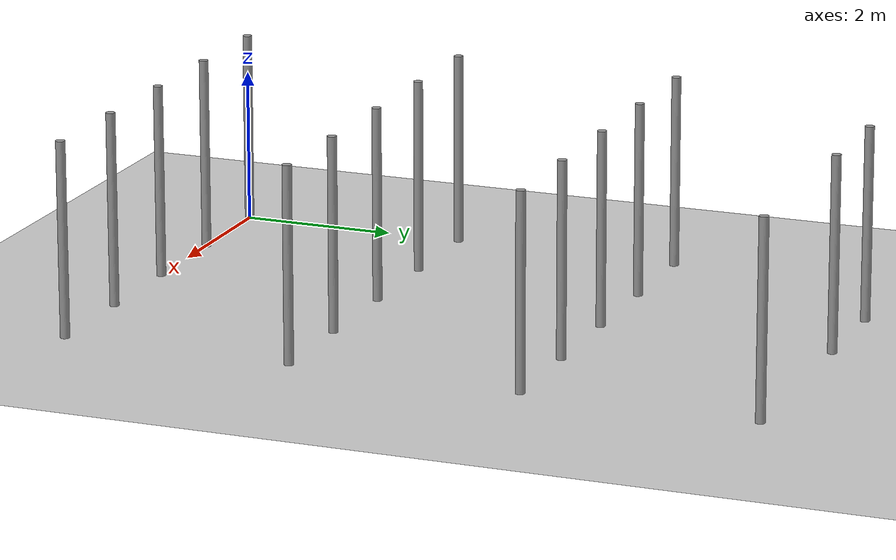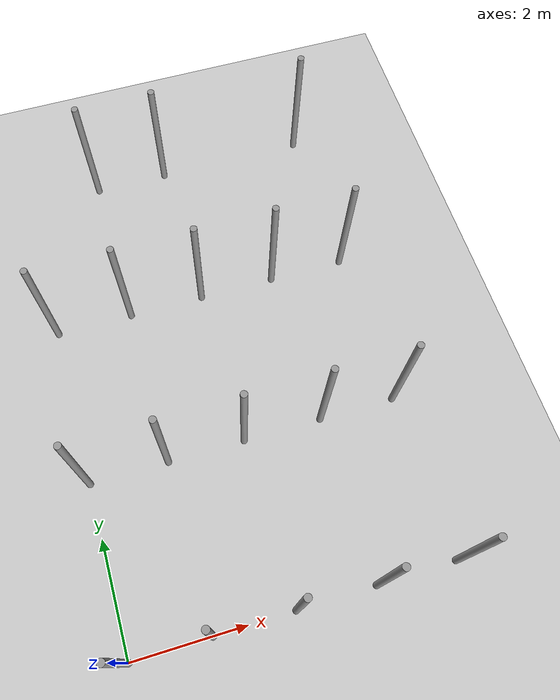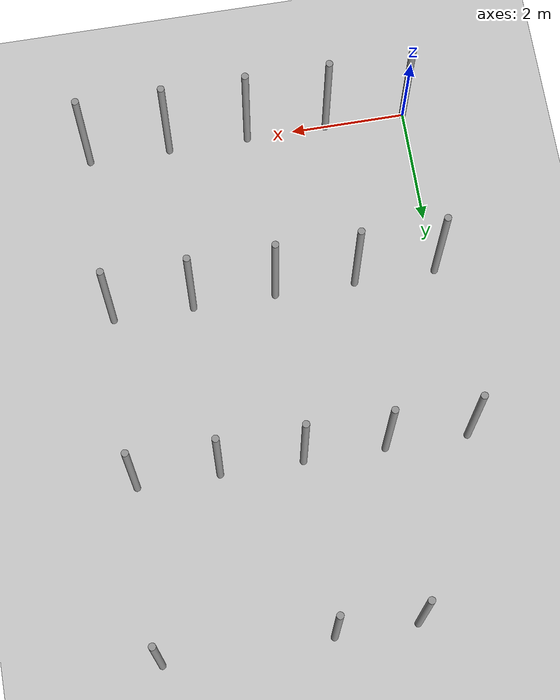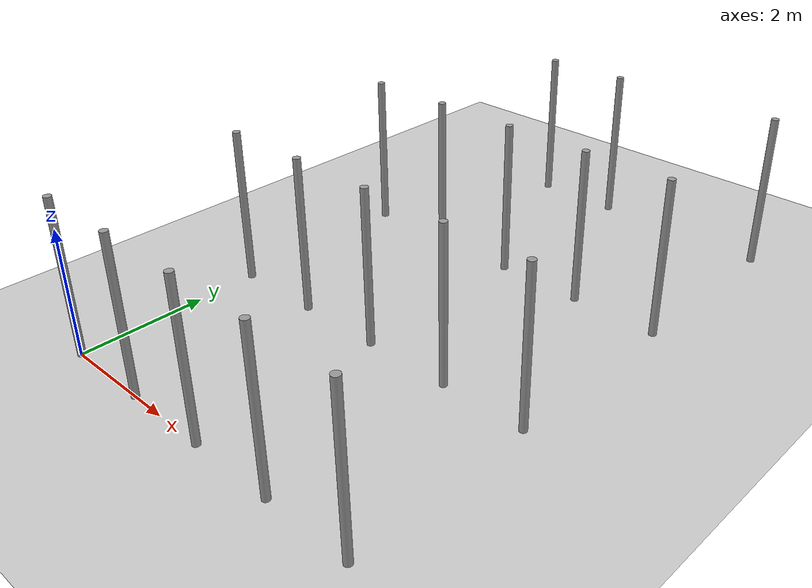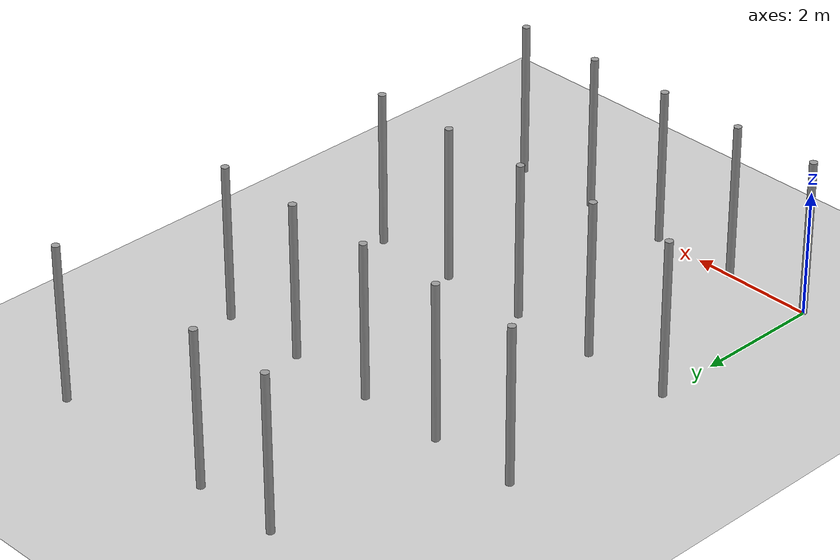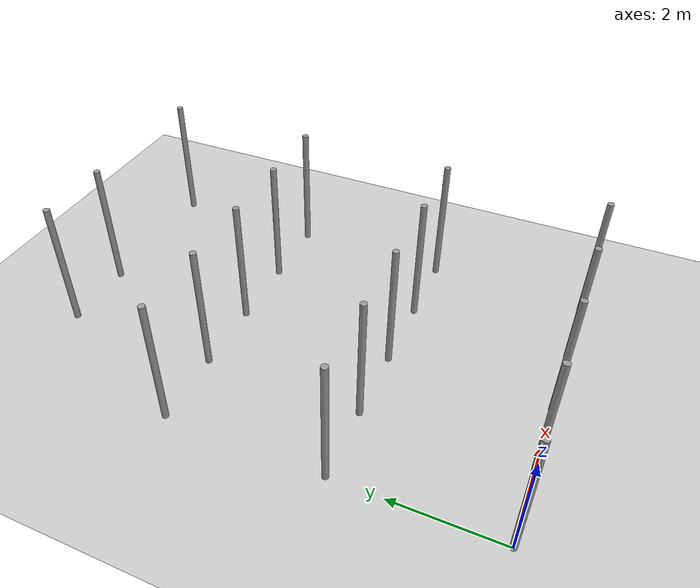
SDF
<sdf version="1.6">
 <world name="default">
  <model name="ground_plane">
   <static>1</static>
   <link name="link">
    <collision name="collision">
     <geometry><plane><normal>0 0 1</normal><size>100 100</size></plane></geometry>
     <surface><friction><ode><mu>100</mu><mu2>50</mu2></ode></friction></surface>
    </collision>
    <visual name="visual">
     <cast_shadows>0</cast_shadows>
     <geometry><plane><normal>0 0 1</normal><size>100 100</size></plane></geometry>
     <material>
      <script><uri>file://media/materials/scripts/gazebo.material</uri><name>Gazebo/Grey</name></script>
     </material>
    </visual>
   </link>
  </model>
  <model name="pole_8">
   <link name="link_0">
    <inertial>
     <mass>0.0364582</mass>
     <inertia>
      <ixx>0.00312124</ixx>
      <ixy>0</ixy>
      <ixz>0</ixz>
      <iyy>0.00312124</iyy>
      <iyz>0</iyz>
      <izz>0.00016615</izz>
     </inertia>
    </inertial>
    <visual name="visual">
     <geometry><cylinder><radius>0.06</radius><length>2.5</length></cylinder></geometry>
     <material>
      <lighting>1</lighting>
      <script><uri>file://media/materials/scripts/gazebo.material</uri><name>Gazebo/Grey</name></script>
      <ambient>0.3 0.3 0.3 1</ambient>
      <diffuse>0.7 0.7 0.7 1</diffuse>
      <specular>0.01 0.01 0.01 1</specular>
      <emissive>0 0 0 1</emissive>
      <shader type="vertex"><normal_map>__default__</normal_map></shader>
     </material>
    </visual>
    <collision name="collision">
     <geometry><cylinder><radius>0.06</radius><length>2.5</length></cylinder></geometry>
     <surface>
      <friction>
       <ode><mu>1</mu><mu2>1</mu2><fdir1>0 0 0</fdir1><slip1>0</slip1><slip2>0</slip2></ode>
       <torsional>
        <coefficient>1</coefficient>
        <patch_radius>0</patch_radius>
        <surface_radius>0</surface_radius>
        <use_patch_radius>1</use_patch_radius>
        <ode><slip>0</slip></ode>
       </torsional>
      </friction>
      <bounce><restitution_coefficient>0</restitution_coefficient><threshold>1e+06</threshold></bounce>
      <contact>
       <collide_without_contact>0</collide_without_contact>
       <collide_without_contact_bitmask>1</collide_without_contact_bitmask>
       <collide_bitmask>1</collide_bitmask>
       <ode>
        <soft_cfm>0</soft_cfm>
        <soft_erp>0.2</soft_erp>
        <kp>1e+13</kp>
        <kd>1</kd>
        <max_vel>0.01</max_vel>
        <min_depth>0</min_depth>
       </ode>
       <bullet>
        <split_impulse>1</split_impulse>
        <split_impulse_penetration_threshold>-0.01</split_impulse_penetration_threshold>
        <soft_cfm>0</soft_cfm>
        <soft_erp>0.2</soft_erp>
        <kp>1e+13</kp>
        <kd>1</kd>
       </bullet>
      </contact>
     </surface>
    </collision>
   </link>
   <static>0</static>
   <pose>1.40425 0.001634 1.24999 -1e-06 -0 -0.021184</pose>
  </model>
  <model name="pole_9">
   <link name="link_0">
    <inertial>
     <mass>0.0364582</mass>
     <inertia>
      <ixx>0.00312124</ixx>
      <ixy>0</ixy>
      <ixz>0</ixz>
      <iyy>0.00312124</iyy>
      <iyz>0</iyz>
      <izz>0.00016615</izz>
     </inertia>
    </inertial>
    <visual name="visual">
     <geometry><cylinder><radius>0.06</radius><length>2.5</length></cylinder></geometry>
     <material>
      <lighting>1</lighting>
      <script><uri>file://media/materials/scripts/gazebo.material</uri><name>Gazebo/Grey</name></script>
      <ambient>0.3 0.3 0.3 1</ambient>
      <diffuse>0.7 0.7 0.7 1</diffuse>
      <specular>0.01 0.01 0.01 1</specular>
      <emissive>0 0 0 1</emissive>
      <shader type="vertex"><normal_map>__default__</normal_map></shader>
     </material>
    </visual>
    <collision name="collision">
     <geometry><cylinder><radius>0.06</radius><length>2.5</length></cylinder></geometry>
     <surface>
      <friction>
       <ode><mu>1</mu><mu2>1</mu2><fdir1>0 0 0</fdir1><slip1>0</slip1><slip2>0</slip2></ode>
       <torsional>
        <coefficient>1</coefficient>
        <patch_radius>0</patch_radius>
        <surface_radius>0</surface_radius>
        <use_patch_radius>1</use_patch_radius>
        <ode><slip>0</slip></ode>
       </torsional>
      </friction>
      <bounce><restitution_coefficient>0</restitution_coefficient><threshold>1e+06</threshold></bounce>
      <contact>
       <collide_without_contact>0</collide_without_contact>
       <collide_without_contact_bitmask>1</collide_without_contact_bitmask>
       <collide_bitmask>1</collide_bitmask>
       <ode>
        <soft_cfm>0</soft_cfm>
        <soft_erp>0.2</soft_erp>
        <kp>1e+13</kp>
        <kd>1</kd>
        <max_vel>0.01</max_vel>
        <min_depth>0</min_depth>
       </ode>
       <bullet>
        <split_impulse>1</split_impulse>
        <split_impulse_penetration_threshold>-0.01</split_impulse_penetration_threshold>
        <soft_cfm>0</soft_cfm>
        <soft_erp>0.2</soft_erp>
        <kp>1e+13</kp>
        <kd>1</kd>
       </bullet>
      </contact>
     </surface>
    </collision>
   </link>
   <static>0</static>
   <pose>2.80805 0.00187 1.24999 0 1e-06 -0.038737</pose>
  </model>
  <model name="pole_10">
   <link name="link_0">
    <inertial>
     <mass>0.0364582</mass>
     <inertia>
      <ixx>0.00312124</ixx>
      <ixy>0</ixy>
      <ixz>0</ixz>
      <iyy>0.00312124</iyy>
      <iyz>0</iyz>
      <izz>0.00016615</izz>
     </inertia>
    </inertial>
    <visual name="visual">
     <geometry><cylinder><radius>0.06</radius><length>2.5</length></cylinder></geometry>
     <material>
      <lighting>1</lighting>
      <script><uri>file://media/materials/scripts/gazebo.material</uri><name>Gazebo/Grey</name></script>
      <ambient>0.3 0.3 0.3 1</ambient>
      <diffuse>0.7 0.7 0.7 1</diffuse>
      <specular>0.01 0.01 0.01 1</specular>
      <emissive>0 0 0 1</emissive>
      <shader type="vertex"><normal_map>__default__</normal_map></shader>
     </material>
    </visual>
    <collision name="collision">
     <geometry><cylinder><radius>0.06</radius><length>2.5</length></cylinder></geometry>
     <surface>
      <friction>
       <ode><mu>1</mu><mu2>1</mu2><fdir1>0 0 0</fdir1><slip1>0</slip1><slip2>0</slip2></ode>
       <torsional>
        <coefficient>1</coefficient>
        <patch_radius>0</patch_radius>
        <surface_radius>0</surface_radius>
        <use_patch_radius>1</use_patch_radius>
        <ode><slip>0</slip></ode>
       </torsional>
      </friction>
      <bounce><restitution_coefficient>0</restitution_coefficient><threshold>1e+06</threshold></bounce>
      <contact>
       <collide_without_contact>0</collide_without_contact>
       <collide_without_contact_bitmask>1</collide_without_contact_bitmask>
       <collide_bitmask>1</collide_bitmask>
       <ode>
        <soft_cfm>0</soft_cfm>
        <soft_erp>0.2</soft_erp>
        <kp>1e+13</kp>
        <kd>1</kd>
        <max_vel>0.01</max_vel>
        <min_depth>0</min_depth>
       </ode>
       <bullet>
        <split_impulse>1</split_impulse>
        <split_impulse_penetration_threshold>-0.01</split_impulse_penetration_threshold>
        <soft_cfm>0</soft_cfm>
        <soft_erp>0.2</soft_erp>
        <kp>1e+13</kp>
        <kd>1</kd>
       </bullet>
      </contact>
     </surface>
    </collision>
   </link>
   <static>0</static>
   <pose>4.20399 0.001699 1.24999 -1e-06 1e-06 -0.02411</pose>
  </model>
  <model name="pole_11">
   <link name="link_0">
    <inertial>
     <mass>0.0364582</mass>
     <inertia>
      <ixx>0.00312124</ixx>
      <ixy>0</ixy>
      <ixz>0</ixz>
      <iyy>0.00312124</iyy>
      <iyz>0</iyz>
      <izz>0.00016615</izz>
     </inertia>
    </inertial>
    <visual name="visual">
     <geometry><cylinder><radius>0.06</radius><length>2.5</length></cylinder></geometry>
     <material>
      <lighting>1</lighting>
      <script><uri>file://media/materials/scripts/gazebo.material</uri><name>Gazebo/Grey</name></script>
      <ambient>0.3 0.3 0.3 1</ambient>
      <diffuse>0.7 0.7 0.7 1</diffuse>
      <specular>0.01 0.01 0.01 1</specular>
      <emissive>0 0 0 1</emissive>
      <shader type="vertex"><normal_map>__default__</normal_map></shader>
     </material>
    </visual>
    <collision name="collision">
     <geometry><cylinder><radius>0.06</radius><length>2.5</length></cylinder></geometry>
     <surface>
      <friction>
       <ode><mu>1</mu><mu2>1</mu2><fdir1>0 0 0</fdir1><slip1>0</slip1><slip2>0</slip2></ode>
       <torsional>
        <coefficient>1</coefficient>
        <patch_radius>0</patch_radius>
        <surface_radius>0</surface_radius>
        <use_patch_radius>1</use_patch_radius>
        <ode><slip>0</slip></ode>
       </torsional>
      </friction>
      <bounce><restitution_coefficient>0</restitution_coefficient><threshold>1e+06</threshold></bounce>
      <contact>
       <collide_without_contact>0</collide_without_contact>
       <collide_without_contact_bitmask>1</collide_without_contact_bitmask>
       <collide_bitmask>1</collide_bitmask>
       <ode>
        <soft_cfm>0</soft_cfm>
        <soft_erp>0.2</soft_erp>
        <kp>1e+13</kp>
        <kd>1</kd>
        <max_vel>0.01</max_vel>
        <min_depth>0</min_depth>
       </ode>
       <bullet>
        <split_impulse>1</split_impulse>
        <split_impulse_penetration_threshold>-0.01</split_impulse_penetration_threshold>
        <soft_cfm>0</soft_cfm>
        <soft_erp>0.2</soft_erp>
        <kp>1e+13</kp>
        <kd>1</kd>
       </bullet>
      </contact>
     </surface>
    </collision>
   </link>
   <static>0</static>
   <pose>5.61625 0.00135 1.24999 -1e-06 1e-06 -0.021959</pose>
  </model>
  <model name="pole_11_clone">
   <link name="link_0">
    <inertial>
     <mass>0.0364582</mass>
     <inertia>
      <ixx>0.00312124</ixx>
      <ixy>0</ixy>
      <ixz>0</ixz>
      <iyy>0.00312124</iyy>
      <iyz>0</iyz>
      <izz>0.00016615</izz>
     </inertia>
    </inertial>
    <visual name="visual">
     <geometry><cylinder><radius>0.06</radius><length>2.5</length></cylinder></geometry>
     <material>
      <lighting>1</lighting>
      <script><uri>file://media/materials/scripts/gazebo.material</uri><name>Gazebo/Grey</name></script>
      <ambient>0.3 0.3 0.3 1</ambient>
      <diffuse>0.7 0.7 0.7 1</diffuse>
      <specular>0.01 0.01 0.01 1</specular>
      <emissive>0 0 0 1</emissive>
      <shader type="vertex"><normal_map>__default__</normal_map></shader>
     </material>
    </visual>
    <collision name="collision">
     <geometry><cylinder><radius>0.06</radius><length>2.5</length></cylinder></geometry>
     <surface>
      <friction>
       <ode><mu>1</mu><mu2>1</mu2><fdir1>0 0 0</fdir1><slip1>0</slip1><slip2>0</slip2></ode>
       <torsional>
        <coefficient>1</coefficient>
        <patch_radius>0</patch_radius>
        <surface_radius>0</surface_radius>
        <use_patch_radius>1</use_patch_radius>
        <ode><slip>0</slip></ode>
       </torsional>
      </friction>
      <bounce><restitution_coefficient>0</restitution_coefficient><threshold>1e+06</threshold></bounce>
      <contact>
       <collide_without_contact>0</collide_without_contact>
       <collide_without_contact_bitmask>1</collide_without_contact_bitmask>
       <collide_bitmask>1</collide_bitmask>
       <ode>
        <soft_cfm>0</soft_cfm>
        <soft_erp>0.2</soft_erp>
        <kp>1e+13</kp>
        <kd>1</kd>
        <max_vel>0.01</max_vel>
        <min_depth>0</min_depth>
       </ode>
       <bullet>
        <split_impulse>1</split_impulse>
        <split_impulse_penetration_threshold>-0.01</split_impulse_penetration_threshold>
        <soft_cfm>0</soft_cfm>
        <soft_erp>0.2</soft_erp>
        <kp>1e+13</kp>
        <kd>1</kd>
       </bullet>
      </contact>
     </surface>
    </collision>
   </link>
   <static>0</static>
   <pose>0.000263 2.98169 1.25 -1e-06 -1e-06 -0.021983</pose>
  </model>
  <model name="pole">
   <link name="link_0">
    <inertial>
     <mass>0.0364582</mass>
     <inertia>
      <ixx>0.00312124</ixx>
      <ixy>0</ixy>
      <ixz>0</ixz>
      <iyy>0.00312124</iyy>
      <iyz>0</iyz>
      <izz>0.00016615</izz>
     </inertia>
    </inertial>
    <visual name="visual">
     <geometry><cylinder><radius>0.06</radius><length>2.5</length></cylinder></geometry>
     <material>
      <lighting>1</lighting>
      <script><uri>file://media/materials/scripts/gazebo.material</uri><name>Gazebo/Grey</name></script>
      <ambient>0.3 0.3 0.3 1</ambient>
      <diffuse>0.7 0.7 0.7 1</diffuse>
      <specular>0.01 0.01 0.01 1</specular>
      <emissive>0 0 0 1</emissive>
      <shader type="vertex"><normal_map>__default__</normal_map></shader>
     </material>
    </visual>
    <collision name="collision">
     <geometry><cylinder><radius>0.06</radius><length>2.5</length></cylinder></geometry>
     <surface>
      <friction>
       <ode><mu>1</mu><mu2>1</mu2><fdir1>0 0 0</fdir1><slip1>0</slip1><slip2>0</slip2></ode>
       <torsional>
        <coefficient>1</coefficient>
        <patch_radius>0</patch_radius>
        <surface_radius>0</surface_radius>
        <use_patch_radius>1</use_patch_radius>
        <ode><slip>0</slip></ode>
       </torsional>
      </friction>
      <bounce><restitution_coefficient>0</restitution_coefficient><threshold>1e+06</threshold></bounce>
      <contact>
       <collide_without_contact>0</collide_without_contact>
       <collide_without_contact_bitmask>1</collide_without_contact_bitmask>
       <collide_bitmask>1</collide_bitmask>
       <ode>
        <soft_cfm>0</soft_cfm>
        <soft_erp>0.2</soft_erp>
        <kp>1e+13</kp>
        <kd>1</kd>
        <max_vel>0.01</max_vel>
        <min_depth>0</min_depth>
       </ode>
       <bullet>
        <split_impulse>1</split_impulse>
        <split_impulse_penetration_threshold>-0.01</split_impulse_penetration_threshold>
        <soft_cfm>0</soft_cfm>
        <soft_erp>0.2</soft_erp>
        <kp>1e+13</kp>
        <kd>1</kd>
       </bullet>
      </contact>
     </surface>
    </collision>
   </link>
   <static>0</static>
   <pose>0.006721 5.96143 1.25 -1e-06 0 -0.017473</pose>
  </model>
  <model name="pole_3">
   <link name="link_0">
    <inertial>
     <mass>0.0364582</mass>
     <inertia>
      <ixx>0.00312124</ixx>
      <ixy>0</ixy>
      <ixz>0</ixz>
      <iyy>0.00312124</iyy>
      <iyz>0</iyz>
      <izz>0.00016615</izz>
     </inertia>
    </inertial>
    <visual name="visual">
     <geometry><cylinder><radius>0.06</radius><length>2.5</length></cylinder></geometry>
     <material>
      <lighting>1</lighting>
      <script><uri>file://media/materials/scripts/gazebo.material</uri><name>Gazebo/Grey</name></script>
      <ambient>0.3 0.3 0.3 1</ambient>
      <diffuse>0.7 0.7 0.7 1</diffuse>
      <specular>0.01 0.01 0.01 1</specular>
      <emissive>0 0 0 1</emissive>
      <shader type="vertex"><normal_map>__default__</normal_map></shader>
     </material>
    </visual>
    <collision name="collision">
     <geometry><cylinder><radius>0.06</radius><length>2.5</length></cylinder></geometry>
     <surface>
      <friction>
       <ode><mu>1</mu><mu2>1</mu2><fdir1>0 0 0</fdir1><slip1>0</slip1><slip2>0</slip2></ode>
       <torsional>
        <coefficient>1</coefficient>
        <patch_radius>0</patch_radius>
        <surface_radius>0</surface_radius>
        <use_patch_radius>1</use_patch_radius>
        <ode><slip>0</slip></ode>
       </torsional>
      </friction>
      <bounce><restitution_coefficient>0</restitution_coefficient><threshold>1e+06</threshold></bounce>
      <contact>
       <collide_without_contact>0</collide_without_contact>
       <collide_without_contact_bitmask>1</collide_without_contact_bitmask>
       <collide_bitmask>1</collide_bitmask>
       <ode>
        <soft_cfm>0</soft_cfm>
        <soft_erp>0.2</soft_erp>
        <kp>1e+13</kp>
        <kd>1</kd>
        <max_vel>0.01</max_vel>
        <min_depth>0</min_depth>
       </ode>
       <bullet>
        <split_impulse>1</split_impulse>
        <split_impulse_penetration_threshold>-0.01</split_impulse_penetration_threshold>
        <soft_cfm>0</soft_cfm>
        <soft_erp>0.2</soft_erp>
        <kp>1e+13</kp>
        <kd>1</kd>
       </bullet>
      </contact>
     </surface>
    </collision>
   </link>
   <static>0</static>
   <pose>1.40475 2.98129 1.25 -1e-06 -0 -0.016085</pose>
  </model>
  <model name="pole_5">
   <link name="link_0">
    <inertial>
     <mass>0.0364582</mass>
     <inertia>
      <ixx>0.00312124</ixx>
      <ixy>0</ixy>
      <ixz>0</ixz>
      <iyy>0.00312124</iyy>
      <iyz>0</iyz>
      <izz>0.00016615</izz>
     </inertia>
    </inertial>
    <visual name="visual">
     <geometry><cylinder><radius>0.06</radius><length>2.5</length></cylinder></geometry>
     <material>
      <lighting>1</lighting>
      <script><uri>file://media/materials/scripts/gazebo.material</uri><name>Gazebo/Grey</name></script>
      <ambient>0.3 0.3 0.3 1</ambient>
      <diffuse>0.7 0.7 0.7 1</diffuse>
      <specular>0.01 0.01 0.01 1</specular>
      <emissive>0 0 0 1</emissive>
      <shader type="vertex"><normal_map>__default__</normal_map></shader>
     </material>
    </visual>
    <collision name="collision">
     <geometry><cylinder><radius>0.06</radius><length>2.5</length></cylinder></geometry>
     <surface>
      <friction>
       <ode><mu>1</mu><mu2>1</mu2><fdir1>0 0 0</fdir1><slip1>0</slip1><slip2>0</slip2></ode>
       <torsional>
        <coefficient>1</coefficient>
        <patch_radius>0</patch_radius>
        <surface_radius>0</surface_radius>
        <use_patch_radius>1</use_patch_radius>
        <ode><slip>0</slip></ode>
       </torsional>
      </friction>
      <bounce><restitution_coefficient>0</restitution_coefficient><threshold>1e+06</threshold></bounce>
      <contact>
       <collide_without_contact>0</collide_without_contact>
       <collide_without_contact_bitmask>1</collide_without_contact_bitmask>
       <collide_bitmask>1</collide_bitmask>
       <ode>
        <soft_cfm>0</soft_cfm>
        <soft_erp>0.2</soft_erp>
        <kp>1e+13</kp>
        <kd>1</kd>
        <max_vel>0.01</max_vel>
        <min_depth>0</min_depth>
       </ode>
       <bullet>
        <split_impulse>1</split_impulse>
        <split_impulse_penetration_threshold>-0.01</split_impulse_penetration_threshold>
        <soft_cfm>0</soft_cfm>
        <soft_erp>0.2</soft_erp>
        <kp>1e+13</kp>
        <kd>1</kd>
       </bullet>
      </contact>
     </surface>
    </collision>
   </link>
   <static>0</static>
   <pose>2.79582 2.98123 1.24999 1e-06 2e-06 -0.014139</pose>
  </model>
  <model name="pole_6">
   <link name="link_0">
    <inertial>
     <mass>0.0364582</mass>
     <inertia>
      <ixx>0.00312124</ixx>
      <ixy>0</ixy>
      <ixz>0</ixz>
      <iyy>0.00312124</iyy>
      <iyz>0</iyz>
      <izz>0.00016615</izz>
     </inertia>
    </inertial>
    <visual name="visual">
     <geometry><cylinder><radius>0.06</radius><length>2.5</length></cylinder></geometry>
     <material>
      <lighting>1</lighting>
      <script><uri>file://media/materials/scripts/gazebo.material</uri><name>Gazebo/Grey</name></script>
      <ambient>0.3 0.3 0.3 1</ambient>
      <diffuse>0.7 0.7 0.7 1</diffuse>
      <specular>0.01 0.01 0.01 1</specular>
      <emissive>0 0 0 1</emissive>
      <shader type="vertex"><normal_map>__default__</normal_map></shader>
     </material>
    </visual>
    <collision name="collision">
     <geometry><cylinder><radius>0.06</radius><length>2.5</length></cylinder></geometry>
     <surface>
      <friction>
       <ode><mu>1</mu><mu2>1</mu2><fdir1>0 0 0</fdir1><slip1>0</slip1><slip2>0</slip2></ode>
       <torsional>
        <coefficient>1</coefficient>
        <patch_radius>0</patch_radius>
        <surface_radius>0</surface_radius>
        <use_patch_radius>1</use_patch_radius>
        <ode><slip>0</slip></ode>
       </torsional>
      </friction>
      <bounce><restitution_coefficient>0</restitution_coefficient><threshold>1e+06</threshold></bounce>
      <contact>
       <collide_without_contact>0</collide_without_contact>
       <collide_without_contact_bitmask>1</collide_without_contact_bitmask>
       <collide_bitmask>1</collide_bitmask>
       <ode>
        <soft_cfm>0</soft_cfm>
        <soft_erp>0.2</soft_erp>
        <kp>1e+13</kp>
        <kd>1</kd>
        <max_vel>0.01</max_vel>
        <min_depth>0</min_depth>
       </ode>
       <bullet>
        <split_impulse>1</split_impulse>
        <split_impulse_penetration_threshold>-0.01</split_impulse_penetration_threshold>
        <soft_cfm>0</soft_cfm>
        <soft_erp>0.2</soft_erp>
        <kp>1e+13</kp>
        <kd>1</kd>
       </bullet>
      </contact>
     </surface>
    </collision>
   </link>
   <static>0</static>
   <pose>4.22242 2.98137 1.24999 0 -2e-06 -0.015298</pose>
  </model>
  <model name="pole_7">
   <link name="link_0">
    <inertial>
     <mass>0.0364582</mass>
     <inertia>
      <ixx>0.00312124</ixx>
      <ixy>0</ixy>
      <ixz>0</ixz>
      <iyy>0.00312124</iyy>
      <iyz>0</iyz>
      <izz>0.00016615</izz>
     </inertia>
    </inertial>
    <visual name="visual">
     <geometry><cylinder><radius>0.06</radius><length>2.5</length></cylinder></geometry>
     <material>
      <lighting>1</lighting>
      <script><uri>file://media/materials/scripts/gazebo.material</uri><name>Gazebo/Grey</name></script>
      <ambient>0.3 0.3 0.3 1</ambient>
      <diffuse>0.7 0.7 0.7 1</diffuse>
      <specular>0.01 0.01 0.01 1</specular>
      <emissive>0 0 0 1</emissive>
      <shader type="vertex"><normal_map>__default__</normal_map></shader>
     </material>
    </visual>
    <collision name="collision">
     <geometry><cylinder><radius>0.06</radius><length>2.5</length></cylinder></geometry>
     <surface>
      <friction>
       <ode><mu>1</mu><mu2>1</mu2><fdir1>0 0 0</fdir1><slip1>0</slip1><slip2>0</slip2></ode>
       <torsional>
        <coefficient>1</coefficient>
        <patch_radius>0</patch_radius>
        <surface_radius>0</surface_radius>
        <use_patch_radius>1</use_patch_radius>
        <ode><slip>0</slip></ode>
       </torsional>
      </friction>
      <bounce><restitution_coefficient>0</restitution_coefficient><threshold>1e+06</threshold></bounce>
      <contact>
       <collide_without_contact>0</collide_without_contact>
       <collide_without_contact_bitmask>1</collide_without_contact_bitmask>
       <collide_bitmask>1</collide_bitmask>
       <ode>
        <soft_cfm>0</soft_cfm>
        <soft_erp>0.2</soft_erp>
        <kp>1e+13</kp>
        <kd>1</kd>
        <max_vel>0.01</max_vel>
        <min_depth>0</min_depth>
       </ode>
       <bullet>
        <split_impulse>1</split_impulse>
        <split_impulse_penetration_threshold>-0.01</split_impulse_penetration_threshold>
        <soft_cfm>0</soft_cfm>
        <soft_erp>0.2</soft_erp>
        <kp>1e+13</kp>
        <kd>1</kd>
       </bullet>
      </contact>
     </surface>
    </collision>
   </link>
   <static>0</static>
   <pose>5.60735 2.98129 1.25 0 -1e-06 -0.014591</pose>
  </model>
  <model name="pole_12">
   <link name="link_0">
    <inertial>
     <mass>0.0364582</mass>
     <inertia>
      <ixx>0.00312124</ixx>
      <ixy>0</ixy>
      <ixz>0</ixz>
      <iyy>0.00312124</iyy>
      <iyz>0</iyz>
      <izz>0.00016615</izz>
     </inertia>
    </inertial>
    <visual name="visual">
     <geometry><cylinder><radius>0.06</radius><length>2.5</length></cylinder></geometry>
     <material>
      <lighting>1</lighting>
      <script><uri>file://media/materials/scripts/gazebo.material</uri><name>Gazebo/Grey</name></script>
      <ambient>0.3 0.3 0.3 1</ambient>
      <diffuse>0.7 0.7 0.7 1</diffuse>
      <specular>0.01 0.01 0.01 1</specular>
      <emissive>0 0 0 1</emissive>
      <shader type="vertex"><normal_map>__default__</normal_map></shader>
     </material>
    </visual>
    <collision name="collision">
     <geometry><cylinder><radius>0.06</radius><length>2.5</length></cylinder></geometry>
     <surface>
      <friction>
       <ode><mu>1</mu><mu2>1</mu2><fdir1>0 0 0</fdir1><slip1>0</slip1><slip2>0</slip2></ode>
       <torsional>
        <coefficient>1</coefficient>
        <patch_radius>0</patch_radius>
        <surface_radius>0</surface_radius>
        <use_patch_radius>1</use_patch_radius>
        <ode><slip>0</slip></ode>
       </torsional>
      </friction>
      <bounce><restitution_coefficient>0</restitution_coefficient><threshold>1e+06</threshold></bounce>
      <contact>
       <collide_without_contact>0</collide_without_contact>
       <collide_without_contact_bitmask>1</collide_without_contact_bitmask>
       <collide_bitmask>1</collide_bitmask>
       <ode>
        <soft_cfm>0</soft_cfm>
        <soft_erp>0.2</soft_erp>
        <kp>1e+13</kp>
        <kd>1</kd>
        <max_vel>0.01</max_vel>
        <min_depth>0</min_depth>
       </ode>
       <bullet>
        <split_impulse>1</split_impulse>
        <split_impulse_penetration_threshold>-0.01</split_impulse_penetration_threshold>
        <soft_cfm>0</soft_cfm>
        <soft_erp>0.2</soft_erp>
        <kp>1e+13</kp>
        <kd>1</kd>
       </bullet>
      </contact>
     </surface>
    </collision>
   </link>
   <static>0</static>
   <pose>1.41362 5.96126 1.24999 -0 1e-06 -0.012678</pose>
  </model>
  <model name="pole_13">
   <link name="link_0">
    <inertial>
     <mass>0.0364582</mass>
     <inertia>
      <ixx>0.00312124</ixx>
      <ixy>0</ixy>
      <ixz>0</ixz>
      <iyy>0.00312124</iyy>
      <iyz>0</iyz>
      <izz>0.00016615</izz>
     </inertia>
    </inertial>
    <visual name="visual">
     <geometry><cylinder><radius>0.06</radius><length>2.5</length></cylinder></geometry>
     <material>
      <lighting>1</lighting>
      <script><uri>file://media/materials/scripts/gazebo.material</uri><name>Gazebo/Grey</name></script>
      <ambient>0.3 0.3 0.3 1</ambient>
      <diffuse>0.7 0.7 0.7 1</diffuse>
      <specular>0.01 0.01 0.01 1</specular>
      <emissive>0 0 0 1</emissive>
      <shader type="vertex"><normal_map>__default__</normal_map></shader>
     </material>
    </visual>
    <collision name="collision">
     <geometry><cylinder><radius>0.06</radius><length>2.5</length></cylinder></geometry>
     <surface>
      <friction>
       <ode><mu>1</mu><mu2>1</mu2><fdir1>0 0 0</fdir1><slip1>0</slip1><slip2>0</slip2></ode>
       <torsional>
        <coefficient>1</coefficient>
        <patch_radius>0</patch_radius>
        <surface_radius>0</surface_radius>
        <use_patch_radius>1</use_patch_radius>
        <ode><slip>0</slip></ode>
       </torsional>
      </friction>
      <bounce><restitution_coefficient>0</restitution_coefficient><threshold>1e+06</threshold></bounce>
      <contact>
       <collide_without_contact>0</collide_without_contact>
       <collide_without_contact_bitmask>1</collide_without_contact_bitmask>
       <collide_bitmask>1</collide_bitmask>
       <ode>
        <soft_cfm>0</soft_cfm>
        <soft_erp>0.2</soft_erp>
        <kp>1e+13</kp>
        <kd>1</kd>
        <max_vel>0.01</max_vel>
        <min_depth>0</min_depth>
       </ode>
       <bullet>
        <split_impulse>1</split_impulse>
        <split_impulse_penetration_threshold>-0.01</split_impulse_penetration_threshold>
        <soft_cfm>0</soft_cfm>
        <soft_erp>0.2</soft_erp>
        <kp>1e+13</kp>
        <kd>1</kd>
       </bullet>
      </contact>
     </surface>
    </collision>
   </link>
   <static>0</static>
   <pose>2.80803 5.96116 1.24999 0 2e-06 -0.012616</pose>
  </model>
  <model name="pole_14">
   <link name="link_0">
    <inertial>
     <mass>0.0364582</mass>
     <inertia>
      <ixx>0.00312124</ixx>
      <ixy>0</ixy>
      <ixz>0</ixz>
      <iyy>0.00312124</iyy>
      <iyz>0</iyz>
      <izz>0.00016615</izz>
     </inertia>
    </inertial>
    <visual name="visual">
     <geometry><cylinder><radius>0.06</radius><length>2.5</length></cylinder></geometry>
     <material>
      <lighting>1</lighting>
      <script><uri>file://media/materials/scripts/gazebo.material</uri><name>Gazebo/Grey</name></script>
      <ambient>0.3 0.3 0.3 1</ambient>
      <diffuse>0.7 0.7 0.7 1</diffuse>
      <specular>0.01 0.01 0.01 1</specular>
      <emissive>0 0 0 1</emissive>
      <shader type="vertex"><normal_map>__default__</normal_map></shader>
     </material>
    </visual>
    <collision name="collision">
     <geometry><cylinder><radius>0.06</radius><length>2.5</length></cylinder></geometry>
     <surface>
      <friction>
       <ode><mu>1</mu><mu2>1</mu2><fdir1>0 0 0</fdir1><slip1>0</slip1><slip2>0</slip2></ode>
       <torsional>
        <coefficient>1</coefficient>
        <patch_radius>0</patch_radius>
        <surface_radius>0</surface_radius>
        <use_patch_radius>1</use_patch_radius>
        <ode><slip>0</slip></ode>
       </torsional>
      </friction>
      <bounce><restitution_coefficient>0</restitution_coefficient><threshold>1e+06</threshold></bounce>
      <contact>
       <collide_without_contact>0</collide_without_contact>
       <collide_without_contact_bitmask>1</collide_without_contact_bitmask>
       <collide_bitmask>1</collide_bitmask>
       <ode>
        <soft_cfm>0</soft_cfm>
        <soft_erp>0.2</soft_erp>
        <kp>1e+13</kp>
        <kd>1</kd>
        <max_vel>0.01</max_vel>
        <min_depth>0</min_depth>
       </ode>
       <bullet>
        <split_impulse>1</split_impulse>
        <split_impulse_penetration_threshold>-0.01</split_impulse_penetration_threshold>
        <soft_cfm>0</soft_cfm>
        <soft_erp>0.2</soft_erp>
        <kp>1e+13</kp>
        <kd>1</kd>
       </bullet>
      </contact>
     </surface>
    </collision>
   </link>
   <static>0</static>
   <pose>4.21953 5.9611 1.24999 -1e-06 -4e-06 -0.011643</pose>
  </model>
  <model name="pole_15">
   <link name="link_0">
    <inertial>
     <mass>0.0364582</mass>
     <inertia>
      <ixx>0.00312124</ixx>
      <ixy>0</ixy>
      <ixz>0</ixz>
      <iyy>0.00312124</iyy>
      <iyz>0</iyz>
      <izz>0.00016615</izz>
     </inertia>
    </inertial>
    <visual name="visual">
     <geometry><cylinder><radius>0.06</radius><length>2.5</length></cylinder></geometry>
     <material>
      <lighting>1</lighting>
      <script><uri>file://media/materials/scripts/gazebo.material</uri><name>Gazebo/Grey</name></script>
      <ambient>0.3 0.3 0.3 1</ambient>
      <diffuse>0.7 0.7 0.7 1</diffuse>
      <specular>0.01 0.01 0.01 1</specular>
      <emissive>0 0 0 1</emissive>
      <shader type="vertex"><normal_map>__default__</normal_map></shader>
     </material>
    </visual>
    <collision name="collision">
     <geometry><cylinder><radius>0.06</radius><length>2.5</length></cylinder></geometry>
     <surface>
      <friction>
       <ode><mu>1</mu><mu2>1</mu2><fdir1>0 0 0</fdir1><slip1>0</slip1><slip2>0</slip2></ode>
       <torsional>
        <coefficient>1</coefficient>
        <patch_radius>0</patch_radius>
        <surface_radius>0</surface_radius>
        <use_patch_radius>1</use_patch_radius>
        <ode><slip>0</slip></ode>
       </torsional>
      </friction>
      <bounce><restitution_coefficient>0</restitution_coefficient><threshold>1e+06</threshold></bounce>
      <contact>
       <collide_without_contact>0</collide_without_contact>
       <collide_without_contact_bitmask>1</collide_without_contact_bitmask>
       <collide_bitmask>1</collide_bitmask>
       <ode>
        <soft_cfm>0</soft_cfm>
        <soft_erp>0.2</soft_erp>
        <kp>1e+13</kp>
        <kd>1</kd>
        <max_vel>0.01</max_vel>
        <min_depth>0</min_depth>
       </ode>
       <bullet>
        <split_impulse>1</split_impulse>
        <split_impulse_penetration_threshold>-0.01</split_impulse_penetration_threshold>
        <soft_cfm>0</soft_cfm>
        <soft_erp>0.2</soft_erp>
        <kp>1e+13</kp>
        <kd>1</kd>
       </bullet>
      </contact>
     </surface>
    </collision>
   </link>
   <static>0</static>
   <pose>5.62353 5.96123 1.24999 0 -1e-06 -0.012998</pose>
  </model>
  <model name="pole_16">
   <link name="link_0">
    <inertial>
     <mass>0.0364582</mass>
     <inertia>
      <ixx>0.00312124</ixx>
      <ixy>0</ixy>
      <ixz>0</ixz>
      <iyy>0.00312124</iyy>
      <iyz>0</iyz>
      <izz>0.00016615</izz>
     </inertia>
    </inertial>
    <visual name="visual">
     <geometry><cylinder><radius>0.06</radius><length>2.5</length></cylinder></geometry>
     <material>
      <lighting>1</lighting>
      <script><uri>file://media/materials/scripts/gazebo.material</uri><name>Gazebo/Grey</name></script>
      <ambient>0.3 0.3 0.3 1</ambient>
      <diffuse>0.7 0.7 0.7 1</diffuse>
      <specular>0.01 0.01 0.01 1</specular>
      <emissive>0 0 0 1</emissive>
      <shader type="vertex"><normal_map>__default__</normal_map></shader>
     </material>
    </visual>
    <collision name="collision">
     <geometry><cylinder><radius>0.06</radius><length>2.5</length></cylinder></geometry>
     <surface>
      <friction>
       <ode><mu>1</mu><mu2>1</mu2><fdir1>0 0 0</fdir1><slip1>0</slip1><slip2>0</slip2></ode>
       <torsional>
        <coefficient>1</coefficient>
        <patch_radius>0</patch_radius>
        <surface_radius>0</surface_radius>
        <use_patch_radius>1</use_patch_radius>
        <ode><slip>0</slip></ode>
       </torsional>
      </friction>
      <bounce><restitution_coefficient>0</restitution_coefficient><threshold>1e+06</threshold></bounce>
      <contact>
       <collide_without_contact>0</collide_without_contact>
       <collide_without_contact_bitmask>1</collide_without_contact_bitmask>
       <collide_bitmask>1</collide_bitmask>
       <ode>
        <soft_cfm>0</soft_cfm>
        <soft_erp>0.2</soft_erp>
        <kp>1e+13</kp>
        <kd>1</kd>
        <max_vel>0.01</max_vel>
        <min_depth>0</min_depth>
       </ode>
       <bullet>
        <split_impulse>1</split_impulse>
        <split_impulse_penetration_threshold>-0.01</split_impulse_penetration_threshold>
        <soft_cfm>0</soft_cfm>
        <soft_erp>0.2</soft_erp>
        <kp>1e+13</kp>
        <kd>1</kd>
       </bullet>
      </contact>
     </surface>
    </collision>
   </link>
   <static>0</static>
   <pose>1.41314 8.94084 1.25 0 1e-06 -0.015959</pose>
  </model>
  <model name="pole_17">
   <link name="link_0">
    <inertial>
     <mass>0.0364582</mass>
     <inertia>
      <ixx>0.00312124</ixx>
      <ixy>0</ixy>
      <ixz>0</ixz>
      <iyy>0.00312124</iyy>
      <iyz>0</iyz>
      <izz>0.00016615</izz>
     </inertia>
    </inertial>
    <visual name="visual">
     <geometry><cylinder><radius>0.06</radius><length>2.5</length></cylinder></geometry>
     <material>
      <lighting>1</lighting>
      <script><uri>file://media/materials/scripts/gazebo.material</uri><name>Gazebo/Grey</name></script>
      <ambient>0.3 0.3 0.3 1</ambient>
      <diffuse>0.7 0.7 0.7 1</diffuse>
      <specular>0.01 0.01 0.01 1</specular>
      <emissive>0 0 0 1</emissive>
      <shader type="vertex"><normal_map>__default__</normal_map></shader>
     </material>
    </visual>
    <collision name="collision">
     <geometry><cylinder><radius>0.06</radius><length>2.5</length></cylinder></geometry>
     <surface>
      <friction>
       <ode><mu>1</mu><mu2>1</mu2><fdir1>0 0 0</fdir1><slip1>0</slip1><slip2>0</slip2></ode>
       <torsional>
        <coefficient>1</coefficient>
        <patch_radius>0</patch_radius>
        <surface_radius>0</surface_radius>
        <use_patch_radius>1</use_patch_radius>
        <ode><slip>0</slip></ode>
       </torsional>
      </friction>
      <bounce><restitution_coefficient>0</restitution_coefficient><threshold>1e+06</threshold></bounce>
      <contact>
       <collide_without_contact>0</collide_without_contact>
       <collide_without_contact_bitmask>1</collide_without_contact_bitmask>
       <collide_bitmask>1</collide_bitmask>
       <ode>
        <soft_cfm>0</soft_cfm>
        <soft_erp>0.2</soft_erp>
        <kp>1e+13</kp>
        <kd>1</kd>
        <max_vel>0.01</max_vel>
        <min_depth>0</min_depth>
       </ode>
       <bullet>
        <split_impulse>1</split_impulse>
        <split_impulse_penetration_threshold>-0.01</split_impulse_penetration_threshold>
        <soft_cfm>0</soft_cfm>
        <soft_erp>0.2</soft_erp>
        <kp>1e+13</kp>
        <kd>1</kd>
       </bullet>
      </contact>
     </surface>
    </collision>
   </link>
   <static>0</static>
   <pose>2.79989 8.94085 1.25 0 2e-06 -0.011853</pose>
  </model>
  <model name="pole_19">
   <link name="link_0">
    <inertial>
     <mass>0.0364582</mass>
     <inertia>
      <ixx>0.00312124</ixx>
      <ixy>0</ixy>
      <ixz>0</ixz>
      <iyy>0.00312124</iyy>
      <iyz>0</iyz>
      <izz>0.00016615</izz>
     </inertia>
    </inertial>
    <visual name="visual">
     <geometry><cylinder><radius>0.06</radius><length>2.5</length></cylinder></geometry>
     <material>
      <lighting>1</lighting>
      <script><uri>file://media/materials/scripts/gazebo.material</uri><name>Gazebo/Grey</name></script>
      <ambient>0.3 0.3 0.3 1</ambient>
      <diffuse>0.7 0.7 0.7 1</diffuse>
      <specular>0.01 0.01 0.01 1</specular>
      <emissive>0 0 0 1</emissive>
      <shader type="vertex"><normal_map>__default__</normal_map></shader>
     </material>
    </visual>
    <collision name="collision">
     <geometry><cylinder><radius>0.06</radius><length>2.5</length></cylinder></geometry>
     <surface>
      <friction>
       <ode><mu>1</mu><mu2>1</mu2><fdir1>0 0 0</fdir1><slip1>0</slip1><slip2>0</slip2></ode>
       <torsional>
        <coefficient>1</coefficient>
        <patch_radius>0</patch_radius>
        <surface_radius>0</surface_radius>
        <use_patch_radius>1</use_patch_radius>
        <ode><slip>0</slip></ode>
       </torsional>
      </friction>
      <bounce><restitution_coefficient>0</restitution_coefficient><threshold>1e+06</threshold></bounce>
      <contact>
       <collide_without_contact>0</collide_without_contact>
       <collide_without_contact_bitmask>1</collide_without_contact_bitmask>
       <collide_bitmask>1</collide_bitmask>
       <ode>
        <soft_cfm>0</soft_cfm>
        <soft_erp>0.2</soft_erp>
        <kp>1e+13</kp>
        <kd>1</kd>
        <max_vel>0.01</max_vel>
        <min_depth>0</min_depth>
       </ode>
       <bullet>
        <split_impulse>1</split_impulse>
        <split_impulse_penetration_threshold>-0.01</split_impulse_penetration_threshold>
        <soft_cfm>0</soft_cfm>
        <soft_erp>0.2</soft_erp>
        <kp>1e+13</kp>
        <kd>1</kd>
       </bullet>
      </contact>
     </surface>
    </collision>
   </link>
   <static>0</static>
   <pose>5.62936 8.94089 1.25 -1e-06 1e-06 -0.00991</pose>
  </model>
  <model name="pole_4">
   <link name="link_0">
    <inertial>
     <mass>0.0364582</mass>
     <inertia>
      <ixx>0.00312124</ixx>
      <ixy>0</ixy>
      <ixz>0</ixz>
      <iyy>0.00312124</iyy>
      <iyz>0</iyz>
      <izz>0.00016615</izz>
     </inertia>
    </inertial>
    <visual name="visual">
     <geometry><cylinder><radius>0.06</radius><length>2.5</length></cylinder></geometry>
     <material>
      <lighting>1</lighting>
      <script><uri>file://media/materials/scripts/gazebo.material</uri><name>Gazebo/Grey</name></script>
      <ambient>0.3 0.3 0.3 1</ambient>
      <diffuse>0.7 0.7 0.7 1</diffuse>
      <specular>0.01 0.01 0.01 1</specular>
      <emissive>0 0 0 1</emissive>
      <shader type="vertex"><normal_map>__default__</normal_map></shader>
     </material>
    </visual>
    <collision name="collision">
     <geometry><cylinder><radius>0.06</radius><length>2.5</length></cylinder></geometry>
     <surface>
      <friction>
       <ode><mu>1</mu><mu2>1</mu2><fdir1>0 0 0</fdir1><slip1>0</slip1><slip2>0</slip2></ode>
       <torsional>
        <coefficient>1</coefficient>
        <patch_radius>0</patch_radius>
        <surface_radius>0</surface_radius>
        <use_patch_radius>1</use_patch_radius>
        <ode><slip>0</slip></ode>
       </torsional>
      </friction>
      <bounce><restitution_coefficient>0</restitution_coefficient><threshold>1e+06</threshold></bounce>
      <contact>
       <collide_without_contact>0</collide_without_contact>
       <collide_without_contact_bitmask>1</collide_without_contact_bitmask>
       <collide_bitmask>1</collide_bitmask>
       <ode>
        <soft_cfm>0</soft_cfm>
        <soft_erp>0.2</soft_erp>
        <kp>1e+13</kp>
        <kd>1</kd>
        <max_vel>0.01</max_vel>
        <min_depth>0</min_depth>
       </ode>
       <bullet>
        <split_impulse>1</split_impulse>
        <split_impulse_penetration_threshold>-0.01</split_impulse_penetration_threshold>
        <soft_cfm>0</soft_cfm>
        <soft_erp>0.2</soft_erp>
        <kp>1e+13</kp>
        <kd>1</kd>
       </bullet>
      </contact>
     </surface>
    </collision>
   </link>
   <static>0</static>
   <pose>0.007003 0.000256 1.25 -1e-06 1e-06 -0.004357</pose>
  </model>
 </world>
</sdf>
